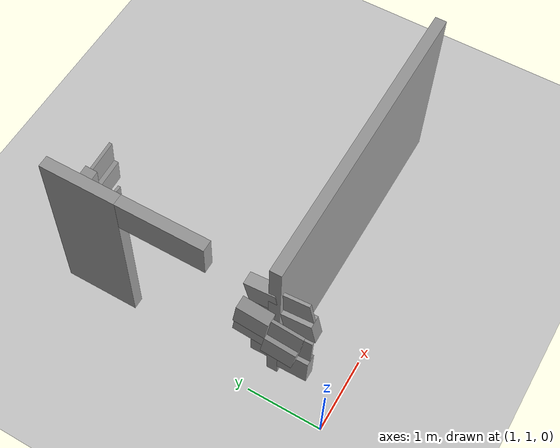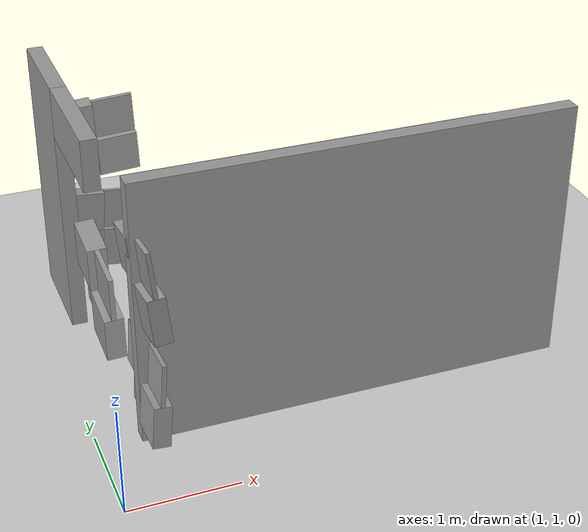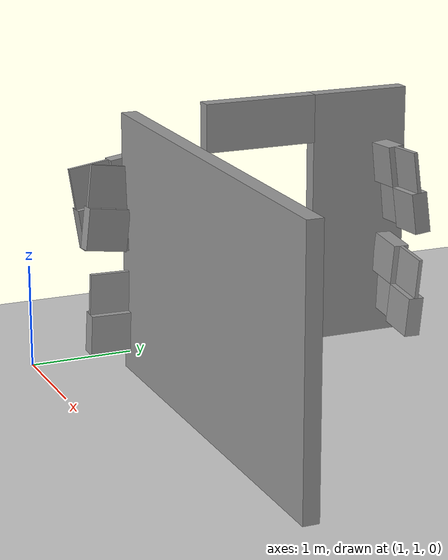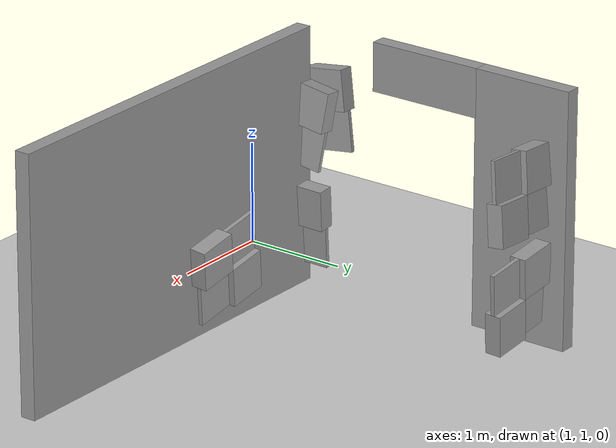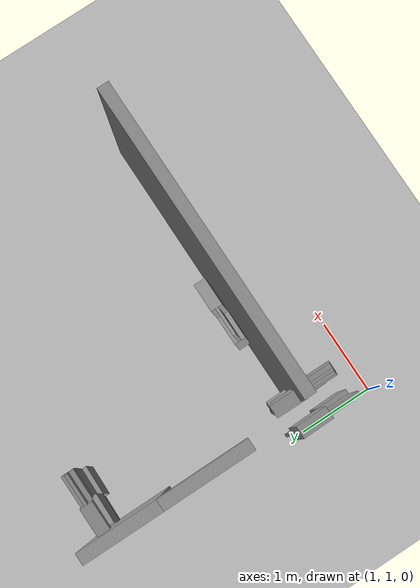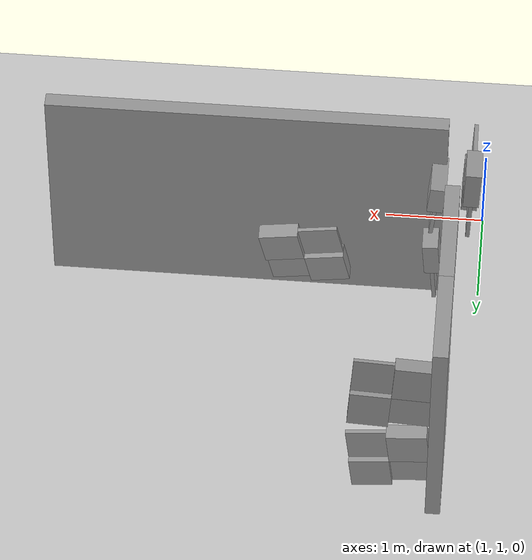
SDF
<sdf version="1.7">
 <world name="default">
  <model name="demo_clean">
   <static>1</static>
   <link name="Wall_11">
    <collision name="Wall_11_Collision">
     <geometry><box><size>4 0.15 2.5</size></box></geometry>
     <pose>0 0 1.25 0 -0 0</pose>
     <surface>
      <friction>
       <ode><mu>1</mu><mu2>1</mu2><fdir1>0 0 0</fdir1><slip1>0</slip1><slip2>0</slip2></ode>
       <torsional>
        <coefficient>1</coefficient>
        <patch_radius>0</patch_radius>
        <surface_radius>0</surface_radius>
        <use_patch_radius>1</use_patch_radius>
        <ode><slip>0</slip></ode>
       </torsional>
      </friction>
      <bounce><restitution_coefficient>0</restitution_coefficient><threshold>1e+06</threshold></bounce>
      <contact>
       <collide_without_contact>0</collide_without_contact>
       <collide_without_contact_bitmask>1</collide_without_contact_bitmask>
       <collide_bitmask>1</collide_bitmask>
       <ode>
        <soft_cfm>0</soft_cfm>
        <soft_erp>0.2</soft_erp>
        <kp>1e+13</kp>
        <kd>1</kd>
        <max_vel>0.01</max_vel>
        <min_depth>0</min_depth>
       </ode>
       <bullet>
        <split_impulse>1</split_impulse>
        <split_impulse_penetration_threshold>-0.01</split_impulse_penetration_threshold>
        <soft_cfm>0</soft_cfm>
        <soft_erp>0.2</soft_erp>
        <kp>1e+13</kp>
        <kd>1</kd>
       </bullet>
      </contact>
     </surface>
    </collision>
    <visual name="Wall_11_Visual">
     <geometry><box><size>4 0.15 2.5</size></box></geometry>
     <material>
      <script><name>Gazebo/Grey</name><uri>file://media/materials/scripts/gazebo.material</uri></script>
      <ambient>1 1 1 1</ambient>
      <shader type="pixel"><normal_map>default</normal_map></shader>
     </material>
     <pose>0 0 1.25 0 -0 0</pose>
    </visual>
    <pose>3.37851 1.89118 0 0 -0 3.14159</pose>
   </link>
   <link name="Wall_25">
    <collision name="Wall_25_Collision">
     <geometry><box><size>1 0.15 2.5</size></box></geometry>
     <pose>0 0 1.25 0 -0 0</pose>
     <surface>
      <friction>
       <ode><mu>1</mu><mu2>1</mu2><fdir1>0 0 0</fdir1><slip1>0</slip1><slip2>0</slip2></ode>
       <torsional>
        <coefficient>1</coefficient>
        <patch_radius>0</patch_radius>
        <surface_radius>0</surface_radius>
        <use_patch_radius>1</use_patch_radius>
        <ode><slip>0</slip></ode>
       </torsional>
      </friction>
      <bounce><restitution_coefficient>0</restitution_coefficient><threshold>1e+06</threshold></bounce>
      <contact>
       <collide_without_contact>0</collide_without_contact>
       <collide_without_contact_bitmask>1</collide_without_contact_bitmask>
       <collide_bitmask>1</collide_bitmask>
       <ode>
        <soft_cfm>0</soft_cfm>
        <soft_erp>0.2</soft_erp>
        <kp>1e+13</kp>
        <kd>1</kd>
        <max_vel>0.01</max_vel>
        <min_depth>0</min_depth>
       </ode>
       <bullet>
        <split_impulse>1</split_impulse>
        <split_impulse_penetration_threshold>-0.01</split_impulse_penetration_threshold>
        <soft_cfm>0</soft_cfm>
        <soft_erp>0.2</soft_erp>
        <kp>1e+13</kp>
        <kd>1</kd>
       </bullet>
      </contact>
     </surface>
    </collision>
    <visual name="Wall_25_Visual">
     <geometry><box><size>1 0.15 2.5</size></box></geometry>
     <material>
      <script><name>Gazebo/Grey</name><uri>file://media/materials/scripts/gazebo.material</uri></script>
      <ambient>1 1 1 1</ambient>
      <shader type="pixel"><normal_map>default</normal_map></shader>
     </material>
     <pose>0 0 1.25 0 -0 0</pose>
    </visual>
    <pose>1.30015 4.30512 0 0 0 -1.5708</pose>
   </link>
   <link name="Wall_28_clone_clone">
    <gravity>0</gravity>
    <collision name="Wall_28_Collision">
     <geometry><box><size>1.13952 0.15 0.476648</size></box></geometry>
     <pose>0 0 1.25 0 -0 0</pose>
     <surface>
      <friction>
       <ode><mu>1</mu><mu2>1</mu2><fdir1>0 0 0</fdir1><slip1>0</slip1><slip2>0</slip2></ode>
       <torsional>
        <coefficient>1</coefficient>
        <patch_radius>0</patch_radius>
        <surface_radius>0</surface_radius>
        <use_patch_radius>1</use_patch_radius>
        <ode><slip>0</slip></ode>
       </torsional>
      </friction>
      <bounce><restitution_coefficient>0</restitution_coefficient><threshold>1e+06</threshold></bounce>
      <contact>
       <collide_without_contact>0</collide_without_contact>
       <collide_without_contact_bitmask>1</collide_without_contact_bitmask>
       <collide_bitmask>1</collide_bitmask>
       <ode>
        <soft_cfm>0</soft_cfm>
        <soft_erp>0.2</soft_erp>
        <kp>1e+13</kp>
        <kd>1</kd>
        <max_vel>0.01</max_vel>
        <min_depth>0</min_depth>
       </ode>
       <bullet>
        <split_impulse>1</split_impulse>
        <split_impulse_penetration_threshold>-0.01</split_impulse_penetration_threshold>
        <soft_cfm>0</soft_cfm>
        <soft_erp>0.2</soft_erp>
        <kp>1e+13</kp>
        <kd>1</kd>
       </bullet>
      </contact>
     </surface>
    </collision>
    <visual name="Wall_28_Visual">
     <geometry><box><size>1.13952 0.15 0.476648</size></box></geometry>
     <material>
      <script><name>Gazebo/Grey</name><uri>file://media/materials/scripts/gazebo.material</uri></script>
      <ambient>1 1 1 1</ambient>
      <shader type="pixel"><normal_map>__default__</normal_map></shader>
     </material>
     <pose>0 0 1.25 0 -0 0</pose>
    </visual>
    <inertial>
     <inertia><ixx>0</ixx><iyy>0</iyy><izz>0</izz><ixy>0</ixy><ixz>0</ixz><iyz>0</iyz></inertia>
     <mass>1</mass>
    </inertial>
    <pose>1.3006 3.24462 1.01168 0 0 -1.57004</pose>
   </link>
  </model>
  <model name="ground_plane">
   <static>1</static>
   <link name="link">
    <collision name="collision">
     <geometry><plane><normal>0 0 1</normal><size>100 100</size></plane></geometry>
     <surface>
      <contact><collide_bitmask>65535</collide_bitmask></contact>
      <friction><ode><mu>100</mu><mu2>50</mu2></ode></friction>
     </surface>
    </collision>
    <visual name="visual">
     <cast_shadows>0</cast_shadows>
     <geometry><plane><normal>0 0 1</normal><size>100 100</size></plane></geometry>
     <material>
      <script><uri>file://media/materials/scripts/gazebo.material</uri><name>Gazebo/Grey</name></script>
     </material>
    </visual>
   </link>
  </model>
  <model name="wall_slate_7">
   <static>1</static>
   <link name="link_0">
    <inertial><mass>1</mass></inertial>
    <gravity>0</gravity>
    <visual name="visual">
     <pose>0 0.2 0.2 0 -0 0</pose>
     <geometry><box><size>0.16 0.4 0.4</size></box></geometry>
     <material>
      <lighting>1</lighting>
      <script><uri>file://media/materials/scripts/gazebo.material</uri><name>Gazebo/Grey</name></script>
      <shader type="pixel"><normal_map>__default__</normal_map></shader>
      <ambient>0.3 0.3 0.3 1</ambient>
      <diffuse>0.7 0.7 0.7 1</diffuse>
      <specular>0.01 0.01 0.01 1</specular>
      <emissive>0 0 0 1</emissive>
     </material>
    </visual>
    <visual name="ModelPreview_0::link_0::visual_1">
     <pose>0 0.2 -0.2 0 -0 0</pose>
     <geometry><box><size>0.04 0.4 0.4</size></box></geometry>
     <material>
      <lighting>1</lighting>
      <script><uri>file://media/materials/scripts/gazebo.material</uri><name>Gazebo/Grey</name></script>
      <shader type="pixel"><normal_map>__default__</normal_map></shader>
      <ambient>0.3 0.3 0.3 1</ambient>
      <diffuse>0.7 0.7 0.7 1</diffuse>
      <specular>0.01 0.01 0.01 1</specular>
      <emissive>0 0 0 1</emissive>
     </material>
    </visual>
    <visual name="ModelPreview_0::link_0::visual_2">
     <pose>0 -0.2 0.2 0 -0 0</pose>
     <geometry><box><size>0.04 0.4 0.4</size></box></geometry>
     <material>
      <lighting>1</lighting>
      <script><uri>file://media/materials/scripts/gazebo.material</uri><name>Gazebo/Grey</name></script>
      <shader type="pixel"><normal_map>__default__</normal_map></shader>
      <ambient>0.3 0.3 0.3 1</ambient>
      <diffuse>0.7 0.7 0.7 1</diffuse>
      <specular>0.01 0.01 0.01 1</specular>
      <emissive>0 0 0 1</emissive>
     </material>
    </visual>
    <visual name="ModelPreview_0::link_0::visual_3">
     <pose>0 -0.2 -0.2 0 -0 0</pose>
     <geometry><box><size>0.16 0.4 0.4</size></box></geometry>
     <material>
      <lighting>1</lighting>
      <script><uri>file://media/materials/scripts/gazebo.material</uri><name>Gazebo/Grey</name></script>
      <shader type="pixel"><normal_map>__default__</normal_map></shader>
      <ambient>0.3 0.3 0.3 1</ambient>
      <diffuse>0.7 0.7 0.7 1</diffuse>
      <specular>0.01 0.01 0.01 1</specular>
      <emissive>0 0 0 1</emissive>
     </material>
    </visual>
    <collision name="collision_2">
     <pose>0 -0.2 0.2 0 -0 0</pose>
     <geometry><box><size>0.04 0.4 0.4</size></box></geometry>
     <surface>
      <friction>
       <ode><mu>1</mu><mu2>1</mu2><fdir1>0 0 0</fdir1><slip1>0</slip1><slip2>0</slip2></ode>
       <torsional>
        <coefficient>1</coefficient>
        <patch_radius>0</patch_radius>
        <surface_radius>0</surface_radius>
        <use_patch_radius>1</use_patch_radius>
        <ode><slip>0</slip></ode>
       </torsional>
      </friction>
      <bounce><restitution_coefficient>0</restitution_coefficient><threshold>1e+06</threshold></bounce>
      <contact>
       <collide_without_contact>0</collide_without_contact>
       <collide_without_contact_bitmask>1</collide_without_contact_bitmask>
       <collide_bitmask>1</collide_bitmask>
       <ode>
        <soft_cfm>0</soft_cfm>
        <soft_erp>0.2</soft_erp>
        <kp>1e+13</kp>
        <kd>1</kd>
        <max_vel>0.01</max_vel>
        <min_depth>0</min_depth>
       </ode>
       <bullet>
        <split_impulse>1</split_impulse>
        <split_impulse_penetration_threshold>-0.01</split_impulse_penetration_threshold>
        <soft_cfm>0</soft_cfm>
        <soft_erp>0.2</soft_erp>
        <kp>1e+13</kp>
        <kd>1</kd>
       </bullet>
      </contact>
     </surface>
    </collision>
    <collision name="collision_1">
     <pose>0 0.2 -0.2 0 -0 0</pose>
     <geometry><box><size>0.04 0.4 0.4</size></box></geometry>
     <surface>
      <friction>
       <ode><mu>1</mu><mu2>1</mu2><fdir1>0 0 0</fdir1><slip1>0</slip1><slip2>0</slip2></ode>
       <torsional>
        <coefficient>1</coefficient>
        <patch_radius>0</patch_radius>
        <surface_radius>0</surface_radius>
        <use_patch_radius>1</use_patch_radius>
        <ode><slip>0</slip></ode>
       </torsional>
      </friction>
      <bounce><restitution_coefficient>0</restitution_coefficient><threshold>1e+06</threshold></bounce>
      <contact>
       <collide_without_contact>0</collide_without_contact>
       <collide_without_contact_bitmask>1</collide_without_contact_bitmask>
       <collide_bitmask>1</collide_bitmask>
       <ode>
        <soft_cfm>0</soft_cfm>
        <soft_erp>0.2</soft_erp>
        <kp>1e+13</kp>
        <kd>1</kd>
        <max_vel>0.01</max_vel>
        <min_depth>0</min_depth>
       </ode>
       <bullet>
        <split_impulse>1</split_impulse>
        <split_impulse_penetration_threshold>-0.01</split_impulse_penetration_threshold>
        <soft_cfm>0</soft_cfm>
        <soft_erp>0.2</soft_erp>
        <kp>1e+13</kp>
        <kd>1</kd>
       </bullet>
      </contact>
     </surface>
    </collision>
    <collision name="collision_4">
     <pose>0 0.2 0.2 0 -0 0</pose>
     <geometry><box><size>0.16 0.4 0.4</size></box></geometry>
     <surface>
      <friction>
       <ode><mu>1</mu><mu2>1</mu2><fdir1>0 0 0</fdir1><slip1>0</slip1><slip2>0</slip2></ode>
       <torsional>
        <coefficient>1</coefficient>
        <patch_radius>0</patch_radius>
        <surface_radius>0</surface_radius>
        <use_patch_radius>1</use_patch_radius>
        <ode><slip>0</slip></ode>
       </torsional>
      </friction>
      <bounce><restitution_coefficient>0</restitution_coefficient><threshold>1e+06</threshold></bounce>
      <contact>
       <collide_without_contact>0</collide_without_contact>
       <collide_without_contact_bitmask>1</collide_without_contact_bitmask>
       <collide_bitmask>1</collide_bitmask>
       <ode>
        <soft_cfm>0</soft_cfm>
        <soft_erp>0.2</soft_erp>
        <kp>1e+13</kp>
        <kd>1</kd>
        <max_vel>0.01</max_vel>
        <min_depth>0</min_depth>
       </ode>
       <bullet>
        <split_impulse>1</split_impulse>
        <split_impulse_penetration_threshold>-0.01</split_impulse_penetration_threshold>
        <soft_cfm>0</soft_cfm>
        <soft_erp>0.2</soft_erp>
        <kp>1e+13</kp>
        <kd>1</kd>
       </bullet>
      </contact>
     </surface>
    </collision>
    <collision name="collision_3">
     <pose>0 -0.2 -0.2 0 -0 0</pose>
     <geometry><box><size>0.16 0.4 0.4</size></box></geometry>
     <surface>
      <friction>
       <ode><mu>1</mu><mu2>1</mu2><fdir1>0 0 0</fdir1><slip1>0</slip1><slip2>0</slip2></ode>
       <torsional>
        <coefficient>1</coefficient>
        <patch_radius>0</patch_radius>
        <surface_radius>0</surface_radius>
        <use_patch_radius>1</use_patch_radius>
        <ode><slip>0</slip></ode>
       </torsional>
      </friction>
      <bounce><restitution_coefficient>0</restitution_coefficient><threshold>1e+06</threshold></bounce>
      <contact>
       <collide_without_contact>0</collide_without_contact>
       <collide_without_contact_bitmask>1</collide_without_contact_bitmask>
       <collide_bitmask>1</collide_bitmask>
       <ode>
        <soft_cfm>0</soft_cfm>
        <soft_erp>0.2</soft_erp>
        <kp>1e+13</kp>
        <kd>1</kd>
        <max_vel>0.01</max_vel>
        <min_depth>0</min_depth>
       </ode>
       <bullet>
        <split_impulse>1</split_impulse>
        <split_impulse_penetration_threshold>-0.01</split_impulse_penetration_threshold>
        <soft_cfm>0</soft_cfm>
        <soft_erp>0.2</soft_erp>
        <kp>1e+13</kp>
        <kd>1</kd>
       </bullet>
      </contact>
     </surface>
    </collision>
   </link>
   <pose>1.47516 1.82711 1.6 -0.14 -0.08 0.0049</pose>
  </model>
  <model name="wall_slate_47">
   <static>1</static>
   <link name="link_0">
    <inertial><mass>1</mass></inertial>
    <gravity>0</gravity>
    <visual name="visual">
     <pose>0 0.2 0.2 0 -0 0</pose>
     <geometry><box><size>0.16 0.4 0.4</size></box></geometry>
     <material>
      <lighting>1</lighting>
      <script><uri>file://media/materials/scripts/gazebo.material</uri><name>Gazebo/Grey</name></script>
      <shader type="pixel"><normal_map>__default__</normal_map></shader>
      <ambient>0.3 0.3 0.3 1</ambient>
      <diffuse>0.7 0.7 0.7 1</diffuse>
      <specular>0.01 0.01 0.01 1</specular>
      <emissive>0 0 0 1</emissive>
     </material>
    </visual>
    <visual name="ModelPreview_0::link_0::visual_1">
     <pose>0 0.2 -0.2 0 -0 0</pose>
     <geometry><box><size>0.04 0.4 0.4</size></box></geometry>
     <material>
      <lighting>1</lighting>
      <script><uri>file://media/materials/scripts/gazebo.material</uri><name>Gazebo/Grey</name></script>
      <shader type="pixel"><normal_map>__default__</normal_map></shader>
      <ambient>0.3 0.3 0.3 1</ambient>
      <diffuse>0.7 0.7 0.7 1</diffuse>
      <specular>0.01 0.01 0.01 1</specular>
      <emissive>0 0 0 1</emissive>
     </material>
    </visual>
    <visual name="ModelPreview_0::link_0::visual_2">
     <pose>0 -0.2 0.2 0 -0 0</pose>
     <geometry><box><size>0.04 0.4 0.4</size></box></geometry>
     <material>
      <lighting>1</lighting>
      <script><uri>file://media/materials/scripts/gazebo.material</uri><name>Gazebo/Grey</name></script>
      <shader type="pixel"><normal_map>__default__</normal_map></shader>
      <ambient>0.3 0.3 0.3 1</ambient>
      <diffuse>0.7 0.7 0.7 1</diffuse>
      <specular>0.01 0.01 0.01 1</specular>
      <emissive>0 0 0 1</emissive>
     </material>
    </visual>
    <visual name="ModelPreview_0::link_0::visual_3">
     <pose>0 -0.2 -0.2 0 -0 0</pose>
     <geometry><box><size>0.16 0.4 0.4</size></box></geometry>
     <material>
      <lighting>1</lighting>
      <script><uri>file://media/materials/scripts/gazebo.material</uri><name>Gazebo/Grey</name></script>
      <shader type="pixel"><normal_map>__default__</normal_map></shader>
      <ambient>0.3 0.3 0.3 1</ambient>
      <diffuse>0.7 0.7 0.7 1</diffuse>
      <specular>0.01 0.01 0.01 1</specular>
      <emissive>0 0 0 1</emissive>
     </material>
    </visual>
    <collision name="collision_2">
     <pose>0 -0.2 0.2 0 -0 0</pose>
     <geometry><box><size>0.04 0.4 0.4</size></box></geometry>
     <surface>
      <friction>
       <ode><mu>1</mu><mu2>1</mu2><fdir1>0 0 0</fdir1><slip1>0</slip1><slip2>0</slip2></ode>
       <torsional>
        <coefficient>1</coefficient>
        <patch_radius>0</patch_radius>
        <surface_radius>0</surface_radius>
        <use_patch_radius>1</use_patch_radius>
        <ode><slip>0</slip></ode>
       </torsional>
      </friction>
      <bounce><restitution_coefficient>0</restitution_coefficient><threshold>1e+06</threshold></bounce>
      <contact>
       <collide_without_contact>0</collide_without_contact>
       <collide_without_contact_bitmask>1</collide_without_contact_bitmask>
       <collide_bitmask>1</collide_bitmask>
       <ode>
        <soft_cfm>0</soft_cfm>
        <soft_erp>0.2</soft_erp>
        <kp>1e+13</kp>
        <kd>1</kd>
        <max_vel>0.01</max_vel>
        <min_depth>0</min_depth>
       </ode>
       <bullet>
        <split_impulse>1</split_impulse>
        <split_impulse_penetration_threshold>-0.01</split_impulse_penetration_threshold>
        <soft_cfm>0</soft_cfm>
        <soft_erp>0.2</soft_erp>
        <kp>1e+13</kp>
        <kd>1</kd>
       </bullet>
      </contact>
     </surface>
    </collision>
    <collision name="collision_1">
     <pose>0 0.2 -0.2 0 -0 0</pose>
     <geometry><box><size>0.04 0.4 0.4</size></box></geometry>
     <surface>
      <friction>
       <ode><mu>1</mu><mu2>1</mu2><fdir1>0 0 0</fdir1><slip1>0</slip1><slip2>0</slip2></ode>
       <torsional>
        <coefficient>1</coefficient>
        <patch_radius>0</patch_radius>
        <surface_radius>0</surface_radius>
        <use_patch_radius>1</use_patch_radius>
        <ode><slip>0</slip></ode>
       </torsional>
      </friction>
      <bounce><restitution_coefficient>0</restitution_coefficient><threshold>1e+06</threshold></bounce>
      <contact>
       <collide_without_contact>0</collide_without_contact>
       <collide_without_contact_bitmask>1</collide_without_contact_bitmask>
       <collide_bitmask>1</collide_bitmask>
       <ode>
        <soft_cfm>0</soft_cfm>
        <soft_erp>0.2</soft_erp>
        <kp>1e+13</kp>
        <kd>1</kd>
        <max_vel>0.01</max_vel>
        <min_depth>0</min_depth>
       </ode>
       <bullet>
        <split_impulse>1</split_impulse>
        <split_impulse_penetration_threshold>-0.01</split_impulse_penetration_threshold>
        <soft_cfm>0</soft_cfm>
        <soft_erp>0.2</soft_erp>
        <kp>1e+13</kp>
        <kd>1</kd>
       </bullet>
      </contact>
     </surface>
    </collision>
    <collision name="collision_4">
     <pose>0 0.2 0.2 0 -0 0</pose>
     <geometry><box><size>0.16 0.4 0.4</size></box></geometry>
     <surface>
      <friction>
       <ode><mu>1</mu><mu2>1</mu2><fdir1>0 0 0</fdir1><slip1>0</slip1><slip2>0</slip2></ode>
       <torsional>
        <coefficient>1</coefficient>
        <patch_radius>0</patch_radius>
        <surface_radius>0</surface_radius>
        <use_patch_radius>1</use_patch_radius>
        <ode><slip>0</slip></ode>
       </torsional>
      </friction>
      <bounce><restitution_coefficient>0</restitution_coefficient><threshold>1e+06</threshold></bounce>
      <contact>
       <collide_without_contact>0</collide_without_contact>
       <collide_without_contact_bitmask>1</collide_without_contact_bitmask>
       <collide_bitmask>1</collide_bitmask>
       <ode>
        <soft_cfm>0</soft_cfm>
        <soft_erp>0.2</soft_erp>
        <kp>1e+13</kp>
        <kd>1</kd>
        <max_vel>0.01</max_vel>
        <min_depth>0</min_depth>
       </ode>
       <bullet>
        <split_impulse>1</split_impulse>
        <split_impulse_penetration_threshold>-0.01</split_impulse_penetration_threshold>
        <soft_cfm>0</soft_cfm>
        <soft_erp>0.2</soft_erp>
        <kp>1e+13</kp>
        <kd>1</kd>
       </bullet>
      </contact>
     </surface>
    </collision>
    <collision name="collision_3">
     <pose>0 -0.2 -0.2 0 -0 0</pose>
     <geometry><box><size>0.16 0.4 0.4</size></box></geometry>
     <surface>
      <friction>
       <ode><mu>1</mu><mu2>1</mu2><fdir1>0 0 0</fdir1><slip1>0</slip1><slip2>0</slip2></ode>
       <torsional>
        <coefficient>1</coefficient>
        <patch_radius>0</patch_radius>
        <surface_radius>0</surface_radius>
        <use_patch_radius>1</use_patch_radius>
        <ode><slip>0</slip></ode>
       </torsional>
      </friction>
      <bounce><restitution_coefficient>0</restitution_coefficient><threshold>1e+06</threshold></bounce>
      <contact>
       <collide_without_contact>0</collide_without_contact>
       <collide_without_contact_bitmask>1</collide_without_contact_bitmask>
       <collide_bitmask>1</collide_bitmask>
       <ode>
        <soft_cfm>0</soft_cfm>
        <soft_erp>0.2</soft_erp>
        <kp>1e+13</kp>
        <kd>1</kd>
        <max_vel>0.01</max_vel>
        <min_depth>0</min_depth>
       </ode>
       <bullet>
        <split_impulse>1</split_impulse>
        <split_impulse_penetration_threshold>-0.01</split_impulse_penetration_threshold>
        <soft_cfm>0</soft_cfm>
        <soft_erp>0.2</soft_erp>
        <kp>1e+13</kp>
        <kd>1</kd>
       </bullet>
      </contact>
     </surface>
    </collision>
   </link>
   <pose>1.12516 1.82711 1.6 0.14 -0.04 0.0049</pose>
  </model>
  <model name="wall_slate_63">
   <static>1</static>
   <link name="link_0">
    <inertial><mass>1</mass></inertial>
    <gravity>0</gravity>
    <visual name="visual">
     <pose>0 0.2 0.2 0 -0 0</pose>
     <geometry><box><size>0.16 0.4 0.4</size></box></geometry>
     <material>
      <lighting>1</lighting>
      <script><uri>file://media/materials/scripts/gazebo.material</uri><name>Gazebo/Grey</name></script>
      <shader type="pixel"><normal_map>__default__</normal_map></shader>
      <ambient>0.3 0.3 0.3 1</ambient>
      <diffuse>0.7 0.7 0.7 1</diffuse>
      <specular>0.01 0.01 0.01 1</specular>
      <emissive>0 0 0 1</emissive>
     </material>
    </visual>
    <visual name="ModelPreview_0::link_0::visual_1">
     <pose>0 0.2 -0.2 0 -0 0</pose>
     <geometry><box><size>0.04 0.4 0.4</size></box></geometry>
     <material>
      <lighting>1</lighting>
      <script><uri>file://media/materials/scripts/gazebo.material</uri><name>Gazebo/Grey</name></script>
      <shader type="pixel"><normal_map>__default__</normal_map></shader>
      <ambient>0.3 0.3 0.3 1</ambient>
      <diffuse>0.7 0.7 0.7 1</diffuse>
      <specular>0.01 0.01 0.01 1</specular>
      <emissive>0 0 0 1</emissive>
     </material>
    </visual>
    <visual name="ModelPreview_0::link_0::visual_2">
     <pose>0 -0.2 0.2 0 -0 0</pose>
     <geometry><box><size>0.04 0.4 0.4</size></box></geometry>
     <material>
      <lighting>1</lighting>
      <script><uri>file://media/materials/scripts/gazebo.material</uri><name>Gazebo/Grey</name></script>
      <shader type="pixel"><normal_map>__default__</normal_map></shader>
      <ambient>0.3 0.3 0.3 1</ambient>
      <diffuse>0.7 0.7 0.7 1</diffuse>
      <specular>0.01 0.01 0.01 1</specular>
      <emissive>0 0 0 1</emissive>
     </material>
    </visual>
    <visual name="ModelPreview_0::link_0::visual_3">
     <pose>0 -0.2 -0.2 0 -0 0</pose>
     <geometry><box><size>0.16 0.4 0.4</size></box></geometry>
     <material>
      <lighting>1</lighting>
      <script><uri>file://media/materials/scripts/gazebo.material</uri><name>Gazebo/Grey</name></script>
      <shader type="pixel"><normal_map>__default__</normal_map></shader>
      <ambient>0.3 0.3 0.3 1</ambient>
      <diffuse>0.7 0.7 0.7 1</diffuse>
      <specular>0.01 0.01 0.01 1</specular>
      <emissive>0 0 0 1</emissive>
     </material>
    </visual>
    <collision name="collision_2">
     <pose>0 -0.2 0.2 0 -0 0</pose>
     <geometry><box><size>0.04 0.4 0.4</size></box></geometry>
     <surface>
      <friction>
       <ode><mu>1</mu><mu2>1</mu2><fdir1>0 0 0</fdir1><slip1>0</slip1><slip2>0</slip2></ode>
       <torsional>
        <coefficient>1</coefficient>
        <patch_radius>0</patch_radius>
        <surface_radius>0</surface_radius>
        <use_patch_radius>1</use_patch_radius>
        <ode><slip>0</slip></ode>
       </torsional>
      </friction>
      <bounce><restitution_coefficient>0</restitution_coefficient><threshold>1e+06</threshold></bounce>
      <contact>
       <collide_without_contact>0</collide_without_contact>
       <collide_without_contact_bitmask>1</collide_without_contact_bitmask>
       <collide_bitmask>1</collide_bitmask>
       <ode>
        <soft_cfm>0</soft_cfm>
        <soft_erp>0.2</soft_erp>
        <kp>1e+13</kp>
        <kd>1</kd>
        <max_vel>0.01</max_vel>
        <min_depth>0</min_depth>
       </ode>
       <bullet>
        <split_impulse>1</split_impulse>
        <split_impulse_penetration_threshold>-0.01</split_impulse_penetration_threshold>
        <soft_cfm>0</soft_cfm>
        <soft_erp>0.2</soft_erp>
        <kp>1e+13</kp>
        <kd>1</kd>
       </bullet>
      </contact>
     </surface>
    </collision>
    <collision name="collision_1">
     <pose>0 0.2 -0.2 0 -0 0</pose>
     <geometry><box><size>0.04 0.4 0.4</size></box></geometry>
     <surface>
      <friction>
       <ode><mu>1</mu><mu2>1</mu2><fdir1>0 0 0</fdir1><slip1>0</slip1><slip2>0</slip2></ode>
       <torsional>
        <coefficient>1</coefficient>
        <patch_radius>0</patch_radius>
        <surface_radius>0</surface_radius>
        <use_patch_radius>1</use_patch_radius>
        <ode><slip>0</slip></ode>
       </torsional>
      </friction>
      <bounce><restitution_coefficient>0</restitution_coefficient><threshold>1e+06</threshold></bounce>
      <contact>
       <collide_without_contact>0</collide_without_contact>
       <collide_without_contact_bitmask>1</collide_without_contact_bitmask>
       <collide_bitmask>1</collide_bitmask>
       <ode>
        <soft_cfm>0</soft_cfm>
        <soft_erp>0.2</soft_erp>
        <kp>1e+13</kp>
        <kd>1</kd>
        <max_vel>0.01</max_vel>
        <min_depth>0</min_depth>
       </ode>
       <bullet>
        <split_impulse>1</split_impulse>
        <split_impulse_penetration_threshold>-0.01</split_impulse_penetration_threshold>
        <soft_cfm>0</soft_cfm>
        <soft_erp>0.2</soft_erp>
        <kp>1e+13</kp>
        <kd>1</kd>
       </bullet>
      </contact>
     </surface>
    </collision>
    <collision name="collision_4">
     <pose>0 0.2 0.2 0 -0 0</pose>
     <geometry><box><size>0.16 0.4 0.4</size></box></geometry>
     <surface>
      <friction>
       <ode><mu>1</mu><mu2>1</mu2><fdir1>0 0 0</fdir1><slip1>0</slip1><slip2>0</slip2></ode>
       <torsional>
        <coefficient>1</coefficient>
        <patch_radius>0</patch_radius>
        <surface_radius>0</surface_radius>
        <use_patch_radius>1</use_patch_radius>
        <ode><slip>0</slip></ode>
       </torsional>
      </friction>
      <bounce><restitution_coefficient>0</restitution_coefficient><threshold>1e+06</threshold></bounce>
      <contact>
       <collide_without_contact>0</collide_without_contact>
       <collide_without_contact_bitmask>1</collide_without_contact_bitmask>
       <collide_bitmask>1</collide_bitmask>
       <ode>
        <soft_cfm>0</soft_cfm>
        <soft_erp>0.2</soft_erp>
        <kp>1e+13</kp>
        <kd>1</kd>
        <max_vel>0.01</max_vel>
        <min_depth>0</min_depth>
       </ode>
       <bullet>
        <split_impulse>1</split_impulse>
        <split_impulse_penetration_threshold>-0.01</split_impulse_penetration_threshold>
        <soft_cfm>0</soft_cfm>
        <soft_erp>0.2</soft_erp>
        <kp>1e+13</kp>
        <kd>1</kd>
       </bullet>
      </contact>
     </surface>
    </collision>
    <collision name="collision_3">
     <pose>0 -0.2 -0.2 0 -0 0</pose>
     <geometry><box><size>0.16 0.4 0.4</size></box></geometry>
     <surface>
      <friction>
       <ode><mu>1</mu><mu2>1</mu2><fdir1>0 0 0</fdir1><slip1>0</slip1><slip2>0</slip2></ode>
       <torsional>
        <coefficient>1</coefficient>
        <patch_radius>0</patch_radius>
        <surface_radius>0</surface_radius>
        <use_patch_radius>1</use_patch_radius>
        <ode><slip>0</slip></ode>
       </torsional>
      </friction>
      <bounce><restitution_coefficient>0</restitution_coefficient><threshold>1e+06</threshold></bounce>
      <contact>
       <collide_without_contact>0</collide_without_contact>
       <collide_without_contact_bitmask>1</collide_without_contact_bitmask>
       <collide_bitmask>1</collide_bitmask>
       <ode>
        <soft_cfm>0</soft_cfm>
        <soft_erp>0.2</soft_erp>
        <kp>1e+13</kp>
        <kd>1</kd>
        <max_vel>0.01</max_vel>
        <min_depth>0</min_depth>
       </ode>
       <bullet>
        <split_impulse>1</split_impulse>
        <split_impulse_penetration_threshold>-0.01</split_impulse_penetration_threshold>
        <soft_cfm>0</soft_cfm>
        <soft_erp>0.2</soft_erp>
        <kp>1e+13</kp>
        <kd>1</kd>
       </bullet>
      </contact>
     </surface>
    </collision>
   </link>
   <pose>1.47516 1.82711 0.6 -0.02 0.08 0.0049</pose>
  </model>
  <model name="wall_slate_80">
   <static>1</static>
   <link name="link_0">
    <inertial><mass>1</mass></inertial>
    <gravity>0</gravity>
    <visual name="visual">
     <pose>0 0.2 0.2 0 -0 0</pose>
     <geometry><box><size>0.16 0.4 0.4</size></box></geometry>
     <material>
      <lighting>1</lighting>
      <script><uri>file://media/materials/scripts/gazebo.material</uri><name>Gazebo/Grey</name></script>
      <shader type="pixel"><normal_map>__default__</normal_map></shader>
      <ambient>0.3 0.3 0.3 1</ambient>
      <diffuse>0.7 0.7 0.7 1</diffuse>
      <specular>0.01 0.01 0.01 1</specular>
      <emissive>0 0 0 1</emissive>
     </material>
    </visual>
    <visual name="ModelPreview_0::link_0::visual_1">
     <pose>0 0.2 -0.2 0 -0 0</pose>
     <geometry><box><size>0.04 0.4 0.4</size></box></geometry>
     <material>
      <lighting>1</lighting>
      <script><uri>file://media/materials/scripts/gazebo.material</uri><name>Gazebo/Grey</name></script>
      <shader type="pixel"><normal_map>__default__</normal_map></shader>
      <ambient>0.3 0.3 0.3 1</ambient>
      <diffuse>0.7 0.7 0.7 1</diffuse>
      <specular>0.01 0.01 0.01 1</specular>
      <emissive>0 0 0 1</emissive>
     </material>
    </visual>
    <visual name="ModelPreview_0::link_0::visual_2">
     <pose>0 -0.2 0.2 0 -0 0</pose>
     <geometry><box><size>0.04 0.4 0.4</size></box></geometry>
     <material>
      <lighting>1</lighting>
      <script><uri>file://media/materials/scripts/gazebo.material</uri><name>Gazebo/Grey</name></script>
      <shader type="pixel"><normal_map>__default__</normal_map></shader>
      <ambient>0.3 0.3 0.3 1</ambient>
      <diffuse>0.7 0.7 0.7 1</diffuse>
      <specular>0.01 0.01 0.01 1</specular>
      <emissive>0 0 0 1</emissive>
     </material>
    </visual>
    <visual name="ModelPreview_0::link_0::visual_3">
     <pose>0 -0.2 -0.2 0 -0 0</pose>
     <geometry><box><size>0.16 0.4 0.4</size></box></geometry>
     <material>
      <lighting>1</lighting>
      <script><uri>file://media/materials/scripts/gazebo.material</uri><name>Gazebo/Grey</name></script>
      <shader type="pixel"><normal_map>__default__</normal_map></shader>
      <ambient>0.3 0.3 0.3 1</ambient>
      <diffuse>0.7 0.7 0.7 1</diffuse>
      <specular>0.01 0.01 0.01 1</specular>
      <emissive>0 0 0 1</emissive>
     </material>
    </visual>
    <collision name="collision_2">
     <pose>0 -0.2 0.2 0 -0 0</pose>
     <geometry><box><size>0.04 0.4 0.4</size></box></geometry>
     <surface>
      <friction>
       <ode><mu>1</mu><mu2>1</mu2><fdir1>0 0 0</fdir1><slip1>0</slip1><slip2>0</slip2></ode>
       <torsional>
        <coefficient>1</coefficient>
        <patch_radius>0</patch_radius>
        <surface_radius>0</surface_radius>
        <use_patch_radius>1</use_patch_radius>
        <ode><slip>0</slip></ode>
       </torsional>
      </friction>
      <bounce><restitution_coefficient>0</restitution_coefficient><threshold>1e+06</threshold></bounce>
      <contact>
       <collide_without_contact>0</collide_without_contact>
       <collide_without_contact_bitmask>1</collide_without_contact_bitmask>
       <collide_bitmask>1</collide_bitmask>
       <ode>
        <soft_cfm>0</soft_cfm>
        <soft_erp>0.2</soft_erp>
        <kp>1e+13</kp>
        <kd>1</kd>
        <max_vel>0.01</max_vel>
        <min_depth>0</min_depth>
       </ode>
       <bullet>
        <split_impulse>1</split_impulse>
        <split_impulse_penetration_threshold>-0.01</split_impulse_penetration_threshold>
        <soft_cfm>0</soft_cfm>
        <soft_erp>0.2</soft_erp>
        <kp>1e+13</kp>
        <kd>1</kd>
       </bullet>
      </contact>
     </surface>
    </collision>
    <collision name="collision_1">
     <pose>0 0.2 -0.2 0 -0 0</pose>
     <geometry><box><size>0.04 0.4 0.4</size></box></geometry>
     <surface>
      <friction>
       <ode><mu>1</mu><mu2>1</mu2><fdir1>0 0 0</fdir1><slip1>0</slip1><slip2>0</slip2></ode>
       <torsional>
        <coefficient>1</coefficient>
        <patch_radius>0</patch_radius>
        <surface_radius>0</surface_radius>
        <use_patch_radius>1</use_patch_radius>
        <ode><slip>0</slip></ode>
       </torsional>
      </friction>
      <bounce><restitution_coefficient>0</restitution_coefficient><threshold>1e+06</threshold></bounce>
      <contact>
       <collide_without_contact>0</collide_without_contact>
       <collide_without_contact_bitmask>1</collide_without_contact_bitmask>
       <collide_bitmask>1</collide_bitmask>
       <ode>
        <soft_cfm>0</soft_cfm>
        <soft_erp>0.2</soft_erp>
        <kp>1e+13</kp>
        <kd>1</kd>
        <max_vel>0.01</max_vel>
        <min_depth>0</min_depth>
       </ode>
       <bullet>
        <split_impulse>1</split_impulse>
        <split_impulse_penetration_threshold>-0.01</split_impulse_penetration_threshold>
        <soft_cfm>0</soft_cfm>
        <soft_erp>0.2</soft_erp>
        <kp>1e+13</kp>
        <kd>1</kd>
       </bullet>
      </contact>
     </surface>
    </collision>
    <collision name="collision_4">
     <pose>0 0.2 0.2 0 -0 0</pose>
     <geometry><box><size>0.16 0.4 0.4</size></box></geometry>
     <surface>
      <friction>
       <ode><mu>1</mu><mu2>1</mu2><fdir1>0 0 0</fdir1><slip1>0</slip1><slip2>0</slip2></ode>
       <torsional>
        <coefficient>1</coefficient>
        <patch_radius>0</patch_radius>
        <surface_radius>0</surface_radius>
        <use_patch_radius>1</use_patch_radius>
        <ode><slip>0</slip></ode>
       </torsional>
      </friction>
      <bounce><restitution_coefficient>0</restitution_coefficient><threshold>1e+06</threshold></bounce>
      <contact>
       <collide_without_contact>0</collide_without_contact>
       <collide_without_contact_bitmask>1</collide_without_contact_bitmask>
       <collide_bitmask>1</collide_bitmask>
       <ode>
        <soft_cfm>0</soft_cfm>
        <soft_erp>0.2</soft_erp>
        <kp>1e+13</kp>
        <kd>1</kd>
        <max_vel>0.01</max_vel>
        <min_depth>0</min_depth>
       </ode>
       <bullet>
        <split_impulse>1</split_impulse>
        <split_impulse_penetration_threshold>-0.01</split_impulse_penetration_threshold>
        <soft_cfm>0</soft_cfm>
        <soft_erp>0.2</soft_erp>
        <kp>1e+13</kp>
        <kd>1</kd>
       </bullet>
      </contact>
     </surface>
    </collision>
    <collision name="collision_3">
     <pose>0 -0.2 -0.2 0 -0 0</pose>
     <geometry><box><size>0.16 0.4 0.4</size></box></geometry>
     <surface>
      <friction>
       <ode><mu>1</mu><mu2>1</mu2><fdir1>0 0 0</fdir1><slip1>0</slip1><slip2>0</slip2></ode>
       <torsional>
        <coefficient>1</coefficient>
        <patch_radius>0</patch_radius>
        <surface_radius>0</surface_radius>
        <use_patch_radius>1</use_patch_radius>
        <ode><slip>0</slip></ode>
       </torsional>
      </friction>
      <bounce><restitution_coefficient>0</restitution_coefficient><threshold>1e+06</threshold></bounce>
      <contact>
       <collide_without_contact>0</collide_without_contact>
       <collide_without_contact_bitmask>1</collide_without_contact_bitmask>
       <collide_bitmask>1</collide_bitmask>
       <ode>
        <soft_cfm>0</soft_cfm>
        <soft_erp>0.2</soft_erp>
        <kp>1e+13</kp>
        <kd>1</kd>
        <max_vel>0.01</max_vel>
        <min_depth>0</min_depth>
       </ode>
       <bullet>
        <split_impulse>1</split_impulse>
        <split_impulse_penetration_threshold>-0.01</split_impulse_penetration_threshold>
        <soft_cfm>0</soft_cfm>
        <soft_erp>0.2</soft_erp>
        <kp>1e+13</kp>
        <kd>1</kd>
       </bullet>
      </contact>
     </surface>
    </collision>
   </link>
   <pose>2.77851 2.06618 0.6 -0.18 -0.1 -1.5659</pose>
  </model>
  <model name="wall_slate_89">
   <static>1</static>
   <link name="link_0">
    <inertial><mass>1</mass></inertial>
    <gravity>0</gravity>
    <visual name="visual">
     <pose>0 0.2 0.2 0 -0 0</pose>
     <geometry><box><size>0.16 0.4 0.4</size></box></geometry>
     <material>
      <lighting>1</lighting>
      <script><uri>file://media/materials/scripts/gazebo.material</uri><name>Gazebo/Grey</name></script>
      <shader type="pixel"><normal_map>__default__</normal_map></shader>
      <ambient>0.3 0.3 0.3 1</ambient>
      <diffuse>0.7 0.7 0.7 1</diffuse>
      <specular>0.01 0.01 0.01 1</specular>
      <emissive>0 0 0 1</emissive>
     </material>
    </visual>
    <visual name="ModelPreview_0::link_0::visual_1">
     <pose>0 0.2 -0.2 0 -0 0</pose>
     <geometry><box><size>0.04 0.4 0.4</size></box></geometry>
     <material>
      <lighting>1</lighting>
      <script><uri>file://media/materials/scripts/gazebo.material</uri><name>Gazebo/Grey</name></script>
      <shader type="pixel"><normal_map>__default__</normal_map></shader>
      <ambient>0.3 0.3 0.3 1</ambient>
      <diffuse>0.7 0.7 0.7 1</diffuse>
      <specular>0.01 0.01 0.01 1</specular>
      <emissive>0 0 0 1</emissive>
     </material>
    </visual>
    <visual name="ModelPreview_0::link_0::visual_2">
     <pose>0 -0.2 0.2 0 -0 0</pose>
     <geometry><box><size>0.04 0.4 0.4</size></box></geometry>
     <material>
      <lighting>1</lighting>
      <script><uri>file://media/materials/scripts/gazebo.material</uri><name>Gazebo/Grey</name></script>
      <shader type="pixel"><normal_map>__default__</normal_map></shader>
      <ambient>0.3 0.3 0.3 1</ambient>
      <diffuse>0.7 0.7 0.7 1</diffuse>
      <specular>0.01 0.01 0.01 1</specular>
      <emissive>0 0 0 1</emissive>
     </material>
    </visual>
    <visual name="ModelPreview_0::link_0::visual_3">
     <pose>0 -0.2 -0.2 0 -0 0</pose>
     <geometry><box><size>0.16 0.4 0.4</size></box></geometry>
     <material>
      <lighting>1</lighting>
      <script><uri>file://media/materials/scripts/gazebo.material</uri><name>Gazebo/Grey</name></script>
      <shader type="pixel"><normal_map>__default__</normal_map></shader>
      <ambient>0.3 0.3 0.3 1</ambient>
      <diffuse>0.7 0.7 0.7 1</diffuse>
      <specular>0.01 0.01 0.01 1</specular>
      <emissive>0 0 0 1</emissive>
     </material>
    </visual>
    <collision name="collision_2">
     <pose>0 -0.2 0.2 0 -0 0</pose>
     <geometry><box><size>0.04 0.4 0.4</size></box></geometry>
     <surface>
      <friction>
       <ode><mu>1</mu><mu2>1</mu2><fdir1>0 0 0</fdir1><slip1>0</slip1><slip2>0</slip2></ode>
       <torsional>
        <coefficient>1</coefficient>
        <patch_radius>0</patch_radius>
        <surface_radius>0</surface_radius>
        <use_patch_radius>1</use_patch_radius>
        <ode><slip>0</slip></ode>
       </torsional>
      </friction>
      <bounce><restitution_coefficient>0</restitution_coefficient><threshold>1e+06</threshold></bounce>
      <contact>
       <collide_without_contact>0</collide_without_contact>
       <collide_without_contact_bitmask>1</collide_without_contact_bitmask>
       <collide_bitmask>1</collide_bitmask>
       <ode>
        <soft_cfm>0</soft_cfm>
        <soft_erp>0.2</soft_erp>
        <kp>1e+13</kp>
        <kd>1</kd>
        <max_vel>0.01</max_vel>
        <min_depth>0</min_depth>
       </ode>
       <bullet>
        <split_impulse>1</split_impulse>
        <split_impulse_penetration_threshold>-0.01</split_impulse_penetration_threshold>
        <soft_cfm>0</soft_cfm>
        <soft_erp>0.2</soft_erp>
        <kp>1e+13</kp>
        <kd>1</kd>
       </bullet>
      </contact>
     </surface>
    </collision>
    <collision name="collision_1">
     <pose>0 0.2 -0.2 0 -0 0</pose>
     <geometry><box><size>0.04 0.4 0.4</size></box></geometry>
     <surface>
      <friction>
       <ode><mu>1</mu><mu2>1</mu2><fdir1>0 0 0</fdir1><slip1>0</slip1><slip2>0</slip2></ode>
       <torsional>
        <coefficient>1</coefficient>
        <patch_radius>0</patch_radius>
        <surface_radius>0</surface_radius>
        <use_patch_radius>1</use_patch_radius>
        <ode><slip>0</slip></ode>
       </torsional>
      </friction>
      <bounce><restitution_coefficient>0</restitution_coefficient><threshold>1e+06</threshold></bounce>
      <contact>
       <collide_without_contact>0</collide_without_contact>
       <collide_without_contact_bitmask>1</collide_without_contact_bitmask>
       <collide_bitmask>1</collide_bitmask>
       <ode>
        <soft_cfm>0</soft_cfm>
        <soft_erp>0.2</soft_erp>
        <kp>1e+13</kp>
        <kd>1</kd>
        <max_vel>0.01</max_vel>
        <min_depth>0</min_depth>
       </ode>
       <bullet>
        <split_impulse>1</split_impulse>
        <split_impulse_penetration_threshold>-0.01</split_impulse_penetration_threshold>
        <soft_cfm>0</soft_cfm>
        <soft_erp>0.2</soft_erp>
        <kp>1e+13</kp>
        <kd>1</kd>
       </bullet>
      </contact>
     </surface>
    </collision>
    <collision name="collision_4">
     <pose>0 0.2 0.2 0 -0 0</pose>
     <geometry><box><size>0.16 0.4 0.4</size></box></geometry>
     <surface>
      <friction>
       <ode><mu>1</mu><mu2>1</mu2><fdir1>0 0 0</fdir1><slip1>0</slip1><slip2>0</slip2></ode>
       <torsional>
        <coefficient>1</coefficient>
        <patch_radius>0</patch_radius>
        <surface_radius>0</surface_radius>
        <use_patch_radius>1</use_patch_radius>
        <ode><slip>0</slip></ode>
       </torsional>
      </friction>
      <bounce><restitution_coefficient>0</restitution_coefficient><threshold>1e+06</threshold></bounce>
      <contact>
       <collide_without_contact>0</collide_without_contact>
       <collide_without_contact_bitmask>1</collide_without_contact_bitmask>
       <collide_bitmask>1</collide_bitmask>
       <ode>
        <soft_cfm>0</soft_cfm>
        <soft_erp>0.2</soft_erp>
        <kp>1e+13</kp>
        <kd>1</kd>
        <max_vel>0.01</max_vel>
        <min_depth>0</min_depth>
       </ode>
       <bullet>
        <split_impulse>1</split_impulse>
        <split_impulse_penetration_threshold>-0.01</split_impulse_penetration_threshold>
        <soft_cfm>0</soft_cfm>
        <soft_erp>0.2</soft_erp>
        <kp>1e+13</kp>
        <kd>1</kd>
       </bullet>
      </contact>
     </surface>
    </collision>
    <collision name="collision_3">
     <pose>0 -0.2 -0.2 0 -0 0</pose>
     <geometry><box><size>0.16 0.4 0.4</size></box></geometry>
     <surface>
      <friction>
       <ode><mu>1</mu><mu2>1</mu2><fdir1>0 0 0</fdir1><slip1>0</slip1><slip2>0</slip2></ode>
       <torsional>
        <coefficient>1</coefficient>
        <patch_radius>0</patch_radius>
        <surface_radius>0</surface_radius>
        <use_patch_radius>1</use_patch_radius>
        <ode><slip>0</slip></ode>
       </torsional>
      </friction>
      <bounce><restitution_coefficient>0</restitution_coefficient><threshold>1e+06</threshold></bounce>
      <contact>
       <collide_without_contact>0</collide_without_contact>
       <collide_without_contact_bitmask>1</collide_without_contact_bitmask>
       <collide_bitmask>1</collide_bitmask>
       <ode>
        <soft_cfm>0</soft_cfm>
        <soft_erp>0.2</soft_erp>
        <kp>1e+13</kp>
        <kd>1</kd>
        <max_vel>0.01</max_vel>
        <min_depth>0</min_depth>
       </ode>
       <bullet>
        <split_impulse>1</split_impulse>
        <split_impulse_penetration_threshold>-0.01</split_impulse_penetration_threshold>
        <soft_cfm>0</soft_cfm>
        <soft_erp>0.2</soft_erp>
        <kp>1e+13</kp>
        <kd>1</kd>
       </bullet>
      </contact>
     </surface>
    </collision>
   </link>
   <pose>1.75351 4.56618 1.6 -0.06 -0.1 1.5757</pose>
  </model>
  <model name="wall_slate_90">
   <static>1</static>
   <link name="link_0">
    <inertial><mass>1</mass></inertial>
    <gravity>0</gravity>
    <visual name="visual">
     <pose>0 0.2 0.2 0 -0 0</pose>
     <geometry><box><size>0.16 0.4 0.4</size></box></geometry>
     <material>
      <lighting>1</lighting>
      <script><uri>file://media/materials/scripts/gazebo.material</uri><name>Gazebo/Grey</name></script>
      <shader type="pixel"><normal_map>__default__</normal_map></shader>
      <ambient>0.3 0.3 0.3 1</ambient>
      <diffuse>0.7 0.7 0.7 1</diffuse>
      <specular>0.01 0.01 0.01 1</specular>
      <emissive>0 0 0 1</emissive>
     </material>
    </visual>
    <visual name="ModelPreview_0::link_0::visual_1">
     <pose>0 0.2 -0.2 0 -0 0</pose>
     <geometry><box><size>0.04 0.4 0.4</size></box></geometry>
     <material>
      <lighting>1</lighting>
      <script><uri>file://media/materials/scripts/gazebo.material</uri><name>Gazebo/Grey</name></script>
      <shader type="pixel"><normal_map>__default__</normal_map></shader>
      <ambient>0.3 0.3 0.3 1</ambient>
      <diffuse>0.7 0.7 0.7 1</diffuse>
      <specular>0.01 0.01 0.01 1</specular>
      <emissive>0 0 0 1</emissive>
     </material>
    </visual>
    <visual name="ModelPreview_0::link_0::visual_2">
     <pose>0 -0.2 0.2 0 -0 0</pose>
     <geometry><box><size>0.04 0.4 0.4</size></box></geometry>
     <material>
      <lighting>1</lighting>
      <script><uri>file://media/materials/scripts/gazebo.material</uri><name>Gazebo/Grey</name></script>
      <shader type="pixel"><normal_map>__default__</normal_map></shader>
      <ambient>0.3 0.3 0.3 1</ambient>
      <diffuse>0.7 0.7 0.7 1</diffuse>
      <specular>0.01 0.01 0.01 1</specular>
      <emissive>0 0 0 1</emissive>
     </material>
    </visual>
    <visual name="ModelPreview_0::link_0::visual_3">
     <pose>0 -0.2 -0.2 0 -0 0</pose>
     <geometry><box><size>0.16 0.4 0.4</size></box></geometry>
     <material>
      <lighting>1</lighting>
      <script><uri>file://media/materials/scripts/gazebo.material</uri><name>Gazebo/Grey</name></script>
      <shader type="pixel"><normal_map>__default__</normal_map></shader>
      <ambient>0.3 0.3 0.3 1</ambient>
      <diffuse>0.7 0.7 0.7 1</diffuse>
      <specular>0.01 0.01 0.01 1</specular>
      <emissive>0 0 0 1</emissive>
     </material>
    </visual>
    <collision name="collision_2">
     <pose>0 -0.2 0.2 0 -0 0</pose>
     <geometry><box><size>0.04 0.4 0.4</size></box></geometry>
     <surface>
      <friction>
       <ode><mu>1</mu><mu2>1</mu2><fdir1>0 0 0</fdir1><slip1>0</slip1><slip2>0</slip2></ode>
       <torsional>
        <coefficient>1</coefficient>
        <patch_radius>0</patch_radius>
        <surface_radius>0</surface_radius>
        <use_patch_radius>1</use_patch_radius>
        <ode><slip>0</slip></ode>
       </torsional>
      </friction>
      <bounce><restitution_coefficient>0</restitution_coefficient><threshold>1e+06</threshold></bounce>
      <contact>
       <collide_without_contact>0</collide_without_contact>
       <collide_without_contact_bitmask>1</collide_without_contact_bitmask>
       <collide_bitmask>1</collide_bitmask>
       <ode>
        <soft_cfm>0</soft_cfm>
        <soft_erp>0.2</soft_erp>
        <kp>1e+13</kp>
        <kd>1</kd>
        <max_vel>0.01</max_vel>
        <min_depth>0</min_depth>
       </ode>
       <bullet>
        <split_impulse>1</split_impulse>
        <split_impulse_penetration_threshold>-0.01</split_impulse_penetration_threshold>
        <soft_cfm>0</soft_cfm>
        <soft_erp>0.2</soft_erp>
        <kp>1e+13</kp>
        <kd>1</kd>
       </bullet>
      </contact>
     </surface>
    </collision>
    <collision name="collision_1">
     <pose>0 0.2 -0.2 0 -0 0</pose>
     <geometry><box><size>0.04 0.4 0.4</size></box></geometry>
     <surface>
      <friction>
       <ode><mu>1</mu><mu2>1</mu2><fdir1>0 0 0</fdir1><slip1>0</slip1><slip2>0</slip2></ode>
       <torsional>
        <coefficient>1</coefficient>
        <patch_radius>0</patch_radius>
        <surface_radius>0</surface_radius>
        <use_patch_radius>1</use_patch_radius>
        <ode><slip>0</slip></ode>
       </torsional>
      </friction>
      <bounce><restitution_coefficient>0</restitution_coefficient><threshold>1e+06</threshold></bounce>
      <contact>
       <collide_without_contact>0</collide_without_contact>
       <collide_without_contact_bitmask>1</collide_without_contact_bitmask>
       <collide_bitmask>1</collide_bitmask>
       <ode>
        <soft_cfm>0</soft_cfm>
        <soft_erp>0.2</soft_erp>
        <kp>1e+13</kp>
        <kd>1</kd>
        <max_vel>0.01</max_vel>
        <min_depth>0</min_depth>
       </ode>
       <bullet>
        <split_impulse>1</split_impulse>
        <split_impulse_penetration_threshold>-0.01</split_impulse_penetration_threshold>
        <soft_cfm>0</soft_cfm>
        <soft_erp>0.2</soft_erp>
        <kp>1e+13</kp>
        <kd>1</kd>
       </bullet>
      </contact>
     </surface>
    </collision>
    <collision name="collision_4">
     <pose>0 0.2 0.2 0 -0 0</pose>
     <geometry><box><size>0.16 0.4 0.4</size></box></geometry>
     <surface>
      <friction>
       <ode><mu>1</mu><mu2>1</mu2><fdir1>0 0 0</fdir1><slip1>0</slip1><slip2>0</slip2></ode>
       <torsional>
        <coefficient>1</coefficient>
        <patch_radius>0</patch_radius>
        <surface_radius>0</surface_radius>
        <use_patch_radius>1</use_patch_radius>
        <ode><slip>0</slip></ode>
       </torsional>
      </friction>
      <bounce><restitution_coefficient>0</restitution_coefficient><threshold>1e+06</threshold></bounce>
      <contact>
       <collide_without_contact>0</collide_without_contact>
       <collide_without_contact_bitmask>1</collide_without_contact_bitmask>
       <collide_bitmask>1</collide_bitmask>
       <ode>
        <soft_cfm>0</soft_cfm>
        <soft_erp>0.2</soft_erp>
        <kp>1e+13</kp>
        <kd>1</kd>
        <max_vel>0.01</max_vel>
        <min_depth>0</min_depth>
       </ode>
       <bullet>
        <split_impulse>1</split_impulse>
        <split_impulse_penetration_threshold>-0.01</split_impulse_penetration_threshold>
        <soft_cfm>0</soft_cfm>
        <soft_erp>0.2</soft_erp>
        <kp>1e+13</kp>
        <kd>1</kd>
       </bullet>
      </contact>
     </surface>
    </collision>
    <collision name="collision_3">
     <pose>0 -0.2 -0.2 0 -0 0</pose>
     <geometry><box><size>0.16 0.4 0.4</size></box></geometry>
     <surface>
      <friction>
       <ode><mu>1</mu><mu2>1</mu2><fdir1>0 0 0</fdir1><slip1>0</slip1><slip2>0</slip2></ode>
       <torsional>
        <coefficient>1</coefficient>
        <patch_radius>0</patch_radius>
        <surface_radius>0</surface_radius>
        <use_patch_radius>1</use_patch_radius>
        <ode><slip>0</slip></ode>
       </torsional>
      </friction>
      <bounce><restitution_coefficient>0</restitution_coefficient><threshold>1e+06</threshold></bounce>
      <contact>
       <collide_without_contact>0</collide_without_contact>
       <collide_without_contact_bitmask>1</collide_without_contact_bitmask>
       <collide_bitmask>1</collide_bitmask>
       <ode>
        <soft_cfm>0</soft_cfm>
        <soft_erp>0.2</soft_erp>
        <kp>1e+13</kp>
        <kd>1</kd>
        <max_vel>0.01</max_vel>
        <min_depth>0</min_depth>
       </ode>
       <bullet>
        <split_impulse>1</split_impulse>
        <split_impulse_penetration_threshold>-0.01</split_impulse_penetration_threshold>
        <soft_cfm>0</soft_cfm>
        <soft_erp>0.2</soft_erp>
        <kp>1e+13</kp>
        <kd>1</kd>
       </bullet>
      </contact>
     </surface>
    </collision>
   </link>
   <pose>1.75351 4.56618 0.6 0.1 0.04 1.5757</pose>
  </model>
 </world>
</sdf>
